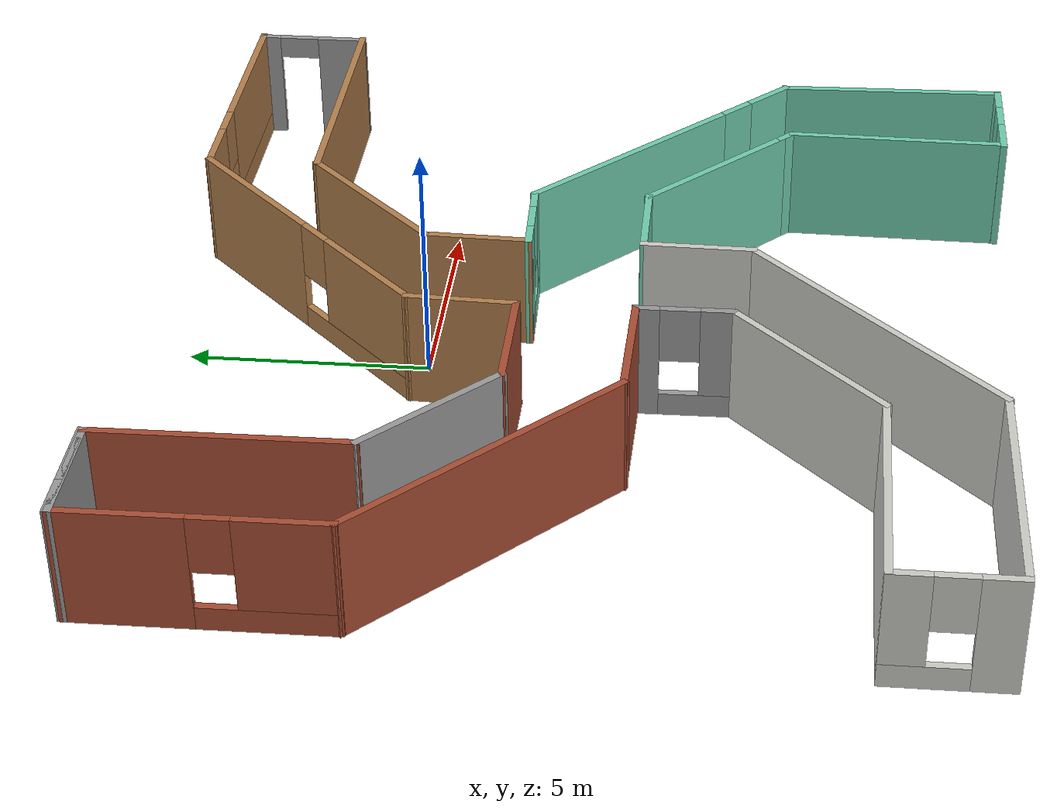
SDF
<?xml version='1.0'?>
<sdf version='1.6'>
  <model name='WindMill'>
    <pose frame=''>0.502984 -3.2246 0 0 -0 0</pose>
    <link name='Wall_100'>
      <collision name='Wall_100_Collision'>
        <geometry>
          <box>
            <size>4.25 0.15 2.5</size>
          </box>
        </geometry>
        <pose frame=''>0 0 1.25 0 -0 0</pose>
      </collision>
      <visual name='Wall_100_Visual'>
        <pose frame=''>0 0 1.25 0 -0 0</pose>
        <geometry>
          <box>
            <size>4.25 0.15 2.5</size>
          </box>
        </geometry>
        <material>
          <script>
            <uri>file://media/materials/scripts/gazebo.material</uri>
            <name>Gazebo/CeilingTiled</name>
          </script>
          <ambient>1 1 1 1</ambient>
        </material>
        <meta>
          <layer>0</layer>
        </meta>
      </visual>
      <pose frame=''>-3.06524 -4.47509 0 0 0 -2.35619</pose>
    </link>
    <link name='Wall_102'>
      <collision name='Wall_102_Collision'>
        <geometry>
          <box>
            <size>7 0.15 2.5</size>
          </box>
        </geometry>
        <pose frame=''>0 0 1.25 0 -0 0</pose>
      </collision>
      <visual name='Wall_102_Visual'>
        <pose frame=''>0 0 1.25 0 -0 0</pose>
        <geometry>
          <box>
            <size>7 0.15 2.5</size>
          </box>
        </geometry>
        <material>
          <script>
            <uri>file://media/materials/scripts/gazebo.material</uri>
            <name>Gazebo/CeilingTiled</name>
          </script>
          <ambient>1 1 1 1</ambient>
        </material>
        <meta>
          <layer>0</layer>
        </meta>
      </visual>
      <pose frame=''>-1.72023 -5.75864 0 0 0 -2.35619</pose>
    </link>
    <link name='Wall_104'>
      <collision name='Wall_104_Collision'>
        <geometry>
          <box>
            <size>2.38906 0.15 2.5</size>
          </box>
        </geometry>
        <pose frame=''>0 0 1.25 0 -0 0</pose>
      </collision>
      <visual name='Wall_104_Visual'>
        <pose frame=''>0 0 1.25 0 -0 0</pose>
        <geometry>
          <box>
            <size>2.38906 0.15 2.5</size>
          </box>
        </geometry>
        <material>
          <script>
            <uri>file://media/materials/scripts/gazebo.material</uri>
            <name>Gazebo/CeilingTiled</name>
          </script>
          <ambient>1 1 1 1</ambient>
        </material>
        <meta>
          <layer>0</layer>
        </meta>
      </visual>
      <pose frame=''>0.72444 -2.2175 0 0 0 -1.59119</pose>
    </link>
    <link name='Wall_106'>
      <pose frame=''>-1.62639 -2.06186 0 0 0 -1.55967</pose>
      <visual name='Wall_106_Visual_0'>
        <pose frame=''>-0.765548 0 1.25 0 -0 0</pose>
        <geometry>
          <box>
            <size>0.546348 0.15 2.5</size>
          </box>
        </geometry>
        <material>
          <script>
            <uri>file://media/materials/scripts/gazebo.material</uri>
            <name>Gazebo/Grey</name>
          </script>
          <ambient>1 1 1 1</ambient>
        </material>
        <meta>
          <layer>0</layer>
        </meta>
      </visual>
      <collision name='Wall_106_Collision_0'>
        <geometry>
          <box>
            <size>0.546348 0.15 2.5</size>
          </box>
        </geometry>
        <pose frame=''>-0.765548 0 1.25 0 -0 0</pose>
      </collision>
      <visual name='Wall_106_Visual_1'>
        <pose frame=''>0.273174 0 0.25 0 -0 0</pose>
        <geometry>
          <box>
            <size>1.5311 0.15 0.5</size>
          </box>
        </geometry>
        <material>
          <script>
            <uri>file://media/materials/scripts/gazebo.material</uri>
            <name>Gazebo/Grey</name>
          </script>
          <ambient>1 1 1 1</ambient>
        </material>
        <meta>
          <layer>0</layer>
        </meta>
      </visual>
      <collision name='Wall_106_Collision_1'>
        <geometry>
          <box>
            <size>1.5311 0.15 0.5</size>
          </box>
        </geometry>
        <pose frame=''>0.273174 0 0.25 0 -0 0</pose>
      </collision>
      <visual name='Wall_106_Visual_2'>
        <pose frame=''>0.673174 0 1.5 0 -0 0</pose>
        <geometry>
          <box>
            <size>0.731095 0.15 2</size>
          </box>
        </geometry>
        <material>
          <script>
            <uri>file://media/materials/scripts/gazebo.material</uri>
            <name>Gazebo/Grey</name>
          </script>
          <ambient>1 1 1 1</ambient>
        </material>
        <meta>
          <layer>0</layer>
        </meta>
      </visual>
      <collision name='Wall_106_Collision_2'>
        <geometry>
          <box>
            <size>0.731095 0.15 2</size>
          </box>
        </geometry>
        <pose frame=''>0.673174 0 1.5 0 -0 0</pose>
      </collision>
      <visual name='Wall_106_Visual_3'>
        <pose frame=''>-0.092374 0 1.9 0 -0 0</pose>
        <geometry>
          <box>
            <size>0.8 0.15 1.2</size>
          </box>
        </geometry>
        <material>
          <script>
            <uri>file://media/materials/scripts/gazebo.material</uri>
            <name>Gazebo/Grey</name>
          </script>
          <ambient>1 1 1 1</ambient>
        </material>
        <meta>
          <layer>0</layer>
        </meta>
      </visual>
      <collision name='Wall_106_Collision_3'>
        <geometry>
          <box>
            <size>0.8 0.15 1.2</size>
          </box>
        </geometry>
        <pose frame=''>-0.092374 0 1.9 0 -0 0</pose>
      </collision>
    </link>
    <link name='Wall_108'>
      <collision name='Wall_108_Collision'>
        <geometry>
          <box>
            <size>4.94583 0.15 2.5</size>
          </box>
        </geometry>
        <pose frame=''>0 0 1.25 0 -0 0</pose>
      </collision>
      <visual name='Wall_108_Visual'>
        <pose frame=''>0 0 1.25 0 -0 0</pose>
        <geometry>
          <box>
            <size>4.94583 0.15 2.5</size>
          </box>
        </geometry>
        <material>
          <script>
            <uri>file://media/materials/scripts/gazebo.material</uri>
            <name>Gazebo/CeilingTiled</name>
          </script>
          <ambient>1 1 1 1</ambient>
        </material>
        <meta>
          <layer>0</layer>
        </meta>
      </visual>
      <pose frame=''>-6.91248 -5.89095 0 0 -0 3.12753</pose>
    </link>
    <link name='Wall_110'>
      <collision name='Wall_110_Collision'>
        <geometry>
          <box>
            <size>5.31815 0.15 2.5</size>
          </box>
        </geometry>
        <pose frame=''>0 0 1.25 0 -0 0</pose>
      </collision>
      <visual name='Wall_110_Visual'>
        <pose frame=''>0 0 1.25 0 -0 0</pose>
        <geometry>
          <box>
            <size>5.31815 0.15 2.5</size>
          </box>
        </geometry>
        <material>
          <script>
            <uri>file://media/materials/scripts/gazebo.material</uri>
            <name>Gazebo/CeilingTiled</name>
          </script>
          <ambient>1 1 1 1</ambient>
        </material>
        <meta>
          <layer>0</layer>
        </meta>
      </visual>
      <pose frame=''>-6.72612 -8.19386 0 0 0 -3.13642</pose>
    </link>
    <link name='Wall_30'>
      <pose frame=''>9.298 7.2768 0 0 -0 1.5708</pose>
      <visual name='Wall_30_Visual_0'>
        <pose frame=''>-0.692179 0 1.25 0 -0 0</pose>
        <geometry>
          <box>
            <size>1.11564 0.15 2.5</size>
          </box>
        </geometry>
        <material>
          <script>
            <uri>file://media/materials/scripts/gazebo.material</uri>
            <name>Gazebo/Grey</name>
          </script>
          <ambient>1 1 1 1</ambient>
        </material>
        <meta>
          <layer>0</layer>
        </meta>
      </visual>
      <collision name='Wall_30_Collision_0'>
        <geometry>
          <box>
            <size>1.11564 0.15 2.5</size>
          </box>
        </geometry>
        <pose frame=''>-0.692179 0 1.25 0 -0 0</pose>
      </collision>
      <visual name='Wall_30_Visual_1'>
        <pose frame=''>1.00782 0 1.25 0 -0 0</pose>
        <geometry>
          <box>
            <size>0.484358 0.15 2.5</size>
          </box>
        </geometry>
        <material>
          <script>
            <uri>file://media/materials/scripts/gazebo.material</uri>
            <name>Gazebo/Grey</name>
          </script>
          <ambient>1 1 1 1</ambient>
        </material>
        <meta>
          <layer>0</layer>
        </meta>
      </visual>
      <collision name='Wall_30_Collision_1'>
        <geometry>
          <box>
            <size>0.484358 0.15 2.5</size>
          </box>
        </geometry>
        <pose frame=''>1.00782 0 1.25 0 -0 0</pose>
      </collision>
      <visual name='Wall_30_Visual_2'>
        <pose frame=''>0.315642 0 2.25 0 -0 0</pose>
        <geometry>
          <box>
            <size>0.9 0.15 0.5</size>
          </box>
        </geometry>
        <material>
          <script>
            <uri>file://media/materials/scripts/gazebo.material</uri>
            <name>Gazebo/Grey</name>
          </script>
          <ambient>1 1 1 1</ambient>
        </material>
        <meta>
          <layer>0</layer>
        </meta>
      </visual>
      <collision name='Wall_30_Collision_2'>
        <geometry>
          <box>
            <size>0.9 0.15 0.5</size>
          </box>
        </geometry>
        <pose frame=''>0.315642 0 2.25 0 -0 0</pose>
      </collision>
    </link>
    <link name='Wall_43'>
      <pose frame=''>6.67268 -8.66869 0 0 -0 0</pose>
      <visual name='Wall_43_Visual_0'>
        <pose frame=''>-0.749658 0 1.25 0 -0 0</pose>
        <geometry>
          <box>
            <size>1.00068 0.15 2.5</size>
          </box>
        </geometry>
        <material>
          <script>
            <uri>file://media/materials/scripts/gazebo.material</uri>
            <name>Gazebo/Grey</name>
          </script>
          <ambient>0.435294 0.796078 0.67451 1</ambient>
        </material>
        <meta>
          <layer>0</layer>
        </meta>
      </visual>
      <collision name='Wall_43_Collision_0'>
        <geometry>
          <box>
            <size>1.00068 0.15 2.5</size>
          </box>
        </geometry>
        <pose frame=''>-0.749658 0 1.25 0 -0 0</pose>
      </collision>
      <visual name='Wall_43_Visual_1'>
        <pose frame=''>0.500342 0 0.25 0 -0 0</pose>
        <geometry>
          <box>
            <size>1.49932 0.15 0.5</size>
          </box>
        </geometry>
        <material>
          <script>
            <uri>file://media/materials/scripts/gazebo.material</uri>
            <name>Gazebo/Grey</name>
          </script>
          <ambient>0.435294 0.796078 0.67451 1</ambient>
        </material>
        <meta>
          <layer>0</layer>
        </meta>
      </visual>
      <collision name='Wall_43_Collision_1'>
        <geometry>
          <box>
            <size>1.49932 0.15 0.5</size>
          </box>
        </geometry>
        <pose frame=''>0.500342 0 0.25 0 -0 0</pose>
      </collision>
      <visual name='Wall_43_Visual_2'>
        <pose frame=''>0.900342 0 1.5 0 -0 0</pose>
        <geometry>
          <box>
            <size>0.699316 0.15 2</size>
          </box>
        </geometry>
        <material>
          <script>
            <uri>file://media/materials/scripts/gazebo.material</uri>
            <name>Gazebo/Grey</name>
          </script>
          <ambient>0.435294 0.796078 0.67451 1</ambient>
        </material>
        <meta>
          <layer>0</layer>
        </meta>
      </visual>
      <collision name='Wall_43_Collision_2'>
        <geometry>
          <box>
            <size>0.699316 0.15 2</size>
          </box>
        </geometry>
        <pose frame=''>0.900342 0 1.5 0 -0 0</pose>
      </collision>
      <visual name='Wall_43_Visual_3'>
        <pose frame=''>0.150684 0 1.9 0 -0 0</pose>
        <geometry>
          <box>
            <size>0.8 0.15 1.2</size>
          </box>
        </geometry>
        <material>
          <script>
            <uri>file://media/materials/scripts/gazebo.material</uri>
            <name>Gazebo/Grey</name>
          </script>
          <ambient>0.435294 0.796078 0.67451 1</ambient>
        </material>
        <meta>
          <layer>0</layer>
        </meta>
      </visual>
      <collision name='Wall_43_Collision_3'>
        <geometry>
          <box>
            <size>0.8 0.15 1.2</size>
          </box>
        </geometry>
        <pose frame=''>0.150684 0 1.9 0 -0 0</pose>
      </collision>
    </link>
    <link name='Wall_50'>
      <pose frame=''>-9.3329 -7.03224 0 0 -0 1.5708</pose>
      <visual name='Wall_50_Visual_0'>
        <pose frame=''>-0.817635 0 1.25 0 -0 0</pose>
        <geometry>
          <box>
            <size>0.864729 0.15 2.5</size>
          </box>
        </geometry>
        <material>
          <script>
            <uri>file://media/materials/scripts/gazebo.material</uri>
            <name>Gazebo/CeilingTiled</name>
          </script>
          <ambient>1 1 1 1</ambient>
        </material>
        <meta>
          <layer>0</layer>
        </meta>
      </visual>
      <collision name='Wall_50_Collision_0'>
        <geometry>
          <box>
            <size>0.864729 0.15 2.5</size>
          </box>
        </geometry>
        <pose frame=''>-0.817635 0 1.25 0 -0 0</pose>
      </collision>
      <visual name='Wall_50_Visual_1'>
        <pose frame=''>0.432365 0 0.25 0 -0 0</pose>
        <geometry>
          <box>
            <size>1.63527 0.15 0.5</size>
          </box>
        </geometry>
        <material>
          <script>
            <uri>file://media/materials/scripts/gazebo.material</uri>
            <name>Gazebo/CeilingTiled</name>
          </script>
          <ambient>1 1 1 1</ambient>
        </material>
        <meta>
          <layer>0</layer>
        </meta>
      </visual>
      <collision name='Wall_50_Collision_1'>
        <geometry>
          <box>
            <size>1.63527 0.15 0.5</size>
          </box>
        </geometry>
        <pose frame=''>0.432365 0 0.25 0 -0 0</pose>
      </collision>
      <visual name='Wall_50_Visual_2'>
        <pose frame=''>0.832365 0 1.5 0 -0 0</pose>
        <geometry>
          <box>
            <size>0.835271 0.15 2</size>
          </box>
        </geometry>
        <material>
          <script>
            <uri>file://media/materials/scripts/gazebo.material</uri>
            <name>Gazebo/CeilingTiled</name>
          </script>
          <ambient>1 1 1 1</ambient>
        </material>
        <meta>
          <layer>0</layer>
        </meta>
      </visual>
      <collision name='Wall_50_Collision_2'>
        <geometry>
          <box>
            <size>0.835271 0.15 2</size>
          </box>
        </geometry>
        <pose frame=''>0.832365 0 1.5 0 -0 0</pose>
      </collision>
      <visual name='Wall_50_Visual_3'>
        <pose frame=''>0.014729 0 1.9 0 -0 0</pose>
        <geometry>
          <box>
            <size>0.8 0.15 1.2</size>
          </box>
        </geometry>
        <material>
          <script>
            <uri>file://media/materials/scripts/gazebo.material</uri>
            <name>Gazebo/CeilingTiled</name>
          </script>
          <ambient>1 1 1 1</ambient>
        </material>
        <meta>
          <layer>0</layer>
        </meta>
      </visual>
      <collision name='Wall_50_Collision_3'>
        <geometry>
          <box>
            <size>0.8 0.15 1.2</size>
          </box>
        </geometry>
        <pose frame=''>0.014729 0 1.9 0 -0 0</pose>
      </collision>
    </link>
    <link name='Wall_55'>
      <collision name='Wall_55_Collision'>
        <geometry>
          <box>
            <size>2.5 0.15 2.5</size>
          </box>
        </geometry>
        <pose frame=''>0 0 1.25 0 -0 0</pose>
      </collision>
      <visual name='Wall_55_Visual'>
        <pose frame=''>0 0 1.25 0 -0 0</pose>
        <geometry>
          <box>
            <size>2.5 0.15 2.5</size>
          </box>
        </geometry>
        <material>
          <script>
            <uri>file://media/materials/scripts/gazebo.material</uri>
            <name>Gazebo/Grey</name>
          </script>
          <ambient>1 1 1 1</ambient>
        </material>
        <meta>
          <layer>0</layer>
        </meta>
      </visual>
      <pose frame=''>-7.70107 8.63578 0 0 -0 0</pose>
    </link>
    <link name='Wall_58'>
      <collision name='Wall_58_Collision'>
        <geometry>
          <box>
            <size>3.5 0.15 2.5</size>
          </box>
        </geometry>
        <pose frame=''>0 0 1.25 0 -0 0</pose>
      </collision>
      <visual name='Wall_58_Visual'>
        <pose frame=''>0 0 1.25 0 -0 0</pose>
        <geometry>
          <box>
            <size>3.5 0.15 2.5</size>
          </box>
        </geometry>
        <material>
          <script>
            <uri>file://media/materials/scripts/gazebo.material</uri>
            <name>Gazebo/Grey</name>
          </script>
          <ambient>1 1 1 1</ambient>
        </material>
        <meta>
          <layer>0</layer>
        </meta>
      </visual>
      <pose frame=''>-5.30188 2.44949 0 0 -0 2.35619</pose>
    </link>
    <link name='Wall_60'>
      <collision name='Wall_60_Collision'>
        <geometry>
          <box>
            <size>6.75 0.15 2.5</size>
          </box>
        </geometry>
        <pose frame=''>0 0 1.25 0 -0 0</pose>
      </collision>
      <visual name='Wall_60_Visual'>
        <pose frame=''>0 0 1.25 0 -0 0</pose>
        <geometry>
          <box>
            <size>6.75 0.15 2.5</size>
          </box>
        </geometry>
        <material>
          <script>
            <uri>file://media/materials/scripts/gazebo.material</uri>
            <name>Gazebo/Bricks</name>
          </script>
          <ambient>1 1 1 1</ambient>
        </material>
        <meta>
          <layer>0</layer>
        </meta>
      </visual>
      <pose frame=''>-6.5205 1.2855 0 0 -0 2.35619</pose>
    </link>
    <link name='Wall_62'>
      <collision name='Wall_62_Collision'>
        <geometry>
          <box>
            <size>2.59562 0.15 2.5</size>
          </box>
        </geometry>
        <pose frame=''>0 0 1.25 0 -0 0</pose>
      </collision>
      <visual name='Wall_62_Visual'>
        <pose frame=''>0 0 1.25 0 -0 0</pose>
        <geometry>
          <box>
            <size>2.59562 0.15 2.5</size>
          </box>
        </geometry>
        <material>
          <script>
            <uri>file://media/materials/scripts/gazebo.material</uri>
            <name>Gazebo/Bricks</name>
          </script>
          <ambient>1 1 1 1</ambient>
        </material>
        <meta>
          <layer>0</layer>
        </meta>
      </visual>
      <pose frame=''>-2.89469 1.25845 0 0 -0 3.13616</pose>
    </link>
    <link name='Wall_63'>
      <collision name='Wall_63_Collision'>
        <geometry>
          <box>
            <size>3.5 0.15 2.5</size>
          </box>
        </geometry>
        <pose frame=''>0 0 1.25 0 -0 0</pose>
      </collision>
      <visual name='Wall_63_Visual'>
        <pose frame=''>0 0 1.25 0 -0 0</pose>
        <geometry>
          <box>
            <size>3.5 0.15 2.5</size>
          </box>
        </geometry>
        <material>
          <script>
            <uri>file://media/materials/scripts/gazebo.material</uri>
            <name>Gazebo/Bricks</name>
          </script>
          <ambient>1 1 1 1</ambient>
        </material>
        <meta>
          <layer>0</layer>
        </meta>
      </visual>
      <pose frame=''>-5.30188 2.44949 0 0 -0 2.35619</pose>
    </link>
    <link name='Wall_64'>
      <collision name='Wall_64_Collision'>
        <geometry>
          <box>
            <size>5.15203 0.15 2.5</size>
          </box>
        </geometry>
        <pose frame=''>0 0 1.25 0 -0 0</pose>
      </collision>
      <visual name='Wall_64_Visual'>
        <pose frame=''>0 0 1.25 0 -0 0</pose>
        <geometry>
          <box>
            <size>5.15203 0.15 2.5</size>
          </box>
        </geometry>
        <material>
          <script>
            <uri>file://media/materials/scripts/gazebo.material</uri>
            <name>Gazebo/Bricks</name>
          </script>
          <ambient>1 1 1 1</ambient>
        </material>
        <meta>
          <layer>0</layer>
        </meta>
      </visual>
      <pose frame=''>-6.50618 6.13484 0 0 -0 1.57875</pose>
    </link>
    <link name='Wall_65'>
      <pose frame=''>-7.70107 8.67036 0 0 -0 3.14159</pose>
      <visual name='Wall_65_Visual_0'>
        <pose frame=''>-0.918287 0 1.25 0 -0 0</pose>
        <geometry>
          <box>
            <size>0.663427 0.15 2.5</size>
          </box>
        </geometry>
        <material>
          <script>
            <uri>file://media/materials/scripts/gazebo.material</uri>
            <name>Gazebo/Grey</name>
          </script>
          <ambient>1 1 1 1</ambient>
        </material>
        <meta>
          <layer>0</layer>
        </meta>
      </visual>
      <collision name='Wall_65_Collision_0'>
        <geometry>
          <box>
            <size>0.663427 0.15 2.5</size>
          </box>
        </geometry>
        <pose frame=''>-0.918287 0 1.25 0 -0 0</pose>
      </collision>
      <visual name='Wall_65_Visual_1'>
        <pose frame=''>0.781713 0 1.25 0 -0 0</pose>
        <geometry>
          <box>
            <size>0.936573 0.15 2.5</size>
          </box>
        </geometry>
        <material>
          <script>
            <uri>file://media/materials/scripts/gazebo.material</uri>
            <name>Gazebo/Grey</name>
          </script>
          <ambient>1 1 1 1</ambient>
        </material>
        <meta>
          <layer>0</layer>
        </meta>
      </visual>
      <collision name='Wall_65_Collision_1'>
        <geometry>
          <box>
            <size>0.936573 0.15 2.5</size>
          </box>
        </geometry>
        <pose frame=''>0.781713 0 1.25 0 -0 0</pose>
      </collision>
      <visual name='Wall_65_Visual_2'>
        <pose frame=''>-0.136573 0 2.25 0 -0 0</pose>
        <geometry>
          <box>
            <size>0.9 0.15 0.5</size>
          </box>
        </geometry>
        <material>
          <script>
            <uri>file://media/materials/scripts/gazebo.material</uri>
            <name>Gazebo/Grey</name>
          </script>
          <ambient>1 1 1 1</ambient>
        </material>
        <meta>
          <layer>0</layer>
        </meta>
      </visual>
      <collision name='Wall_65_Collision_2'>
        <geometry>
          <box>
            <size>0.9 0.15 0.5</size>
          </box>
        </geometry>
        <pose frame=''>-0.136573 0 2.25 0 -0 0</pose>
      </collision>
    </link>
    <link name='Wall_66'>
      <pose frame=''>-8.86501 6.12736 0 0 0 -1.56639</pose>
      <visual name='Wall_66_Visual_0'>
        <pose frame=''>-1.34246 0 1.25 0 -0 0</pose>
        <geometry>
          <box>
            <size>2.48273 0.15 2.5</size>
          </box>
        </geometry>
        <material>
          <script>
            <uri>file://media/materials/scripts/gazebo.material</uri>
            <name>Gazebo/Bricks</name>
          </script>
          <ambient>1 1 1 1</ambient>
        </material>
        <meta>
          <layer>0</layer>
        </meta>
      </visual>
      <collision name='Wall_66_Collision_0'>
        <geometry>
          <box>
            <size>2.48273 0.15 2.5</size>
          </box>
        </geometry>
        <pose frame=''>-1.34246 0 1.25 0 -0 0</pose>
      </collision>
      <visual name='Wall_66_Visual_1'>
        <pose frame=''>1.24137 0 0.25 0 -0 0</pose>
        <geometry>
          <box>
            <size>2.68492 0.15 0.5</size>
          </box>
        </geometry>
        <material>
          <script>
            <uri>file://media/materials/scripts/gazebo.material</uri>
            <name>Gazebo/Bricks</name>
          </script>
          <ambient>1 1 1 1</ambient>
        </material>
        <meta>
          <layer>0</layer>
        </meta>
      </visual>
      <collision name='Wall_66_Collision_1'>
        <geometry>
          <box>
            <size>2.68492 0.15 0.5</size>
          </box>
        </geometry>
        <pose frame=''>1.24137 0 0.25 0 -0 0</pose>
      </collision>
      <visual name='Wall_66_Visual_2'>
        <pose frame=''>1.64137 0 1.5 0 -0 0</pose>
        <geometry>
          <box>
            <size>1.88492 0.15 2</size>
          </box>
        </geometry>
        <material>
          <script>
            <uri>file://media/materials/scripts/gazebo.material</uri>
            <name>Gazebo/Bricks</name>
          </script>
          <ambient>1 1 1 1</ambient>
        </material>
        <meta>
          <layer>0</layer>
        </meta>
      </visual>
      <collision name='Wall_66_Collision_2'>
        <geometry>
          <box>
            <size>1.88492 0.15 2</size>
          </box>
        </geometry>
        <pose frame=''>1.64137 0 1.5 0 -0 0</pose>
      </collision>
      <visual name='Wall_66_Visual_3'>
        <pose frame=''>0.298907 0 1.9 0 -0 0</pose>
        <geometry>
          <box>
            <size>0.8 0.15 1.2</size>
          </box>
        </geometry>
        <material>
          <script>
            <uri>file://media/materials/scripts/gazebo.material</uri>
            <name>Gazebo/Bricks</name>
          </script>
          <ambient>1 1 1 1</ambient>
        </material>
        <meta>
          <layer>0</layer>
        </meta>
      </visual>
      <collision name='Wall_66_Collision_3'>
        <geometry>
          <box>
            <size>0.8 0.15 1.2</size>
          </box>
        </geometry>
        <pose frame=''>0.298907 0 1.9 0 -0 0</pose>
      </collision>
    </link>
    <link name='Wall_68'>
      <collision name='Wall_68_Collision'>
        <geometry>
          <box>
            <size>2.70042 0.15 2.5</size>
          </box>
        </geometry>
        <pose frame=''>0 0 1.25 0 -0 0</pose>
      </collision>
      <visual name='Wall_68_Visual'>
        <pose frame=''>0 0 1.25 0 -0 0</pose>
        <geometry>
          <box>
            <size>2.70042 0.15 2.5</size>
          </box>
        </geometry>
        <material>
          <script>
            <uri>file://media/materials/scripts/gazebo.material</uri>
            <name>Gazebo/Bricks</name>
          </script>
          <ambient>1 1 1 1</ambient>
        </material>
        <meta>
          <layer>0</layer>
        </meta>
      </visual>
      <pose frame=''>-2.91208 -1.07308 0 0 0 -0.019703</pose>
    </link>
    <link name='Wall_70'>
      <collision name='Wall_70_Collision'>
        <geometry>
          <box>
            <size>4 0.15 2.5</size>
          </box>
        </geometry>
        <pose frame=''>0 0 1.25 0 -0 0</pose>
      </collision>
      <visual name='Wall_70_Visual'>
        <pose frame=''>0 0 1.25 0 -0 0</pose>
        <geometry>
          <box>
            <size>4 0.15 2.5</size>
          </box>
        </geometry>
        <material>
          <script>
            <uri>file://media/materials/scripts/gazebo.material</uri>
            <name>Gazebo/Wood</name>
          </script>
          <ambient>1 1 1 1</ambient>
        </material>
        <meta>
          <layer>0</layer>
        </meta>
      </visual>
      <pose frame=''>2.11327 4.7654 0 0 -0 0.785398</pose>
    </link>
    <link name='Wall_72'>
      <pose frame=''>0.920117 5.95486 0 0 0 -2.35619</pose>
      <visual name='Wall_72_Visual_0'>
        <pose frame=''>-1.80499 0 1.25 0 -0 0</pose>
        <geometry>
          <box>
            <size>3.64002 0.15 2.5</size>
          </box>
        </geometry>
        <material>
          <script>
            <uri>file://media/materials/scripts/gazebo.material</uri>
            <name>Gazebo/Wood</name>
          </script>
          <ambient>1 1 1 1</ambient>
        </material>
        <meta>
          <layer>0</layer>
        </meta>
      </visual>
      <collision name='Wall_72_Collision_0'>
        <geometry>
          <box>
            <size>3.64002 0.15 2.5</size>
          </box>
        </geometry>
        <pose frame=''>-1.80499 0 1.25 0 -0 0</pose>
      </collision>
      <visual name='Wall_72_Visual_1'>
        <pose frame=''>1.82001 0 0.25 0 -0 0</pose>
        <geometry>
          <box>
            <size>3.60998 0.15 0.5</size>
          </box>
        </geometry>
        <material>
          <script>
            <uri>file://media/materials/scripts/gazebo.material</uri>
            <name>Gazebo/Wood</name>
          </script>
          <ambient>1 1 1 1</ambient>
        </material>
        <meta>
          <layer>0</layer>
        </meta>
      </visual>
      <collision name='Wall_72_Collision_1'>
        <geometry>
          <box>
            <size>3.60998 0.15 0.5</size>
          </box>
        </geometry>
        <pose frame=''>1.82001 0 0.25 0 -0 0</pose>
      </collision>
      <visual name='Wall_72_Visual_2'>
        <pose frame=''>2.22001 0 1.5 0 -0 0</pose>
        <geometry>
          <box>
            <size>2.80998 0.15 2</size>
          </box>
        </geometry>
        <material>
          <script>
            <uri>file://media/materials/scripts/gazebo.material</uri>
            <name>Gazebo/Wood</name>
          </script>
          <ambient>1 1 1 1</ambient>
        </material>
        <meta>
          <layer>0</layer>
        </meta>
      </visual>
      <collision name='Wall_72_Collision_2'>
        <geometry>
          <box>
            <size>2.80998 0.15 2</size>
          </box>
        </geometry>
        <pose frame=''>2.22001 0 1.5 0 -0 0</pose>
      </collision>
      <visual name='Wall_72_Visual_3'>
        <pose frame=''>0.415021 0 1.9 0 -0 0</pose>
        <geometry>
          <box>
            <size>0.8 0.15 1.2</size>
          </box>
        </geometry>
        <material>
          <script>
            <uri>file://media/materials/scripts/gazebo.material</uri>
            <name>Gazebo/Wood</name>
          </script>
          <ambient>1 1 1 1</ambient>
        </material>
        <meta>
          <layer>0</layer>
        </meta>
      </visual>
      <collision name='Wall_72_Collision_3'>
        <geometry>
          <box>
            <size>0.8 0.15 1.2</size>
          </box>
        </geometry>
        <pose frame=''>0.415021 0 1.9 0 -0 0</pose>
      </collision>
    </link>
    <link name='Wall_74'>
      <pose frame=''>6.38146 8.45844 0 0 0 -0.002252</pose>
      <visual name='Wall_74_Visual_0'>
        <pose frame=''>-2.32999 0 1.25 0 -0 0</pose>
        <geometry>
          <box>
            <size>1.39226 0.15 2.5</size>
          </box>
        </geometry>
        <material>
          <script>
            <uri>file://media/materials/scripts/gazebo.material</uri>
            <name>Gazebo/Wood</name>
          </script>
          <ambient>1 1 1 1</ambient>
        </material>
        <meta>
          <layer>0</layer>
        </meta>
      </visual>
      <collision name='Wall_74_Collision_0'>
        <geometry>
          <box>
            <size>1.39226 0.15 2.5</size>
          </box>
        </geometry>
        <pose frame=''>-2.32999 0 1.25 0 -0 0</pose>
      </collision>
      <visual name='Wall_74_Visual_1'>
        <pose frame=''>0.696132 0 0.25 0 -0 0</pose>
        <geometry>
          <box>
            <size>4.65999 0.15 0.5</size>
          </box>
        </geometry>
        <material>
          <script>
            <uri>file://media/materials/scripts/gazebo.material</uri>
            <name>Gazebo/Wood</name>
          </script>
          <ambient>1 1 1 1</ambient>
        </material>
        <meta>
          <layer>0</layer>
        </meta>
      </visual>
      <collision name='Wall_74_Collision_1'>
        <geometry>
          <box>
            <size>4.65999 0.15 0.5</size>
          </box>
        </geometry>
        <pose frame=''>0.696132 0 0.25 0 -0 0</pose>
      </collision>
      <visual name='Wall_74_Visual_2'>
        <pose frame=''>1.09613 0 1.5 0 -0 0</pose>
        <geometry>
          <box>
            <size>3.85999 0.15 2</size>
          </box>
        </geometry>
        <material>
          <script>
            <uri>file://media/materials/scripts/gazebo.material</uri>
            <name>Gazebo/Wood</name>
          </script>
          <ambient>1 1 1 1</ambient>
        </material>
        <meta>
          <layer>0</layer>
        </meta>
      </visual>
      <collision name='Wall_74_Collision_2'>
        <geometry>
          <box>
            <size>3.85999 0.15 2</size>
          </box>
        </geometry>
        <pose frame=''>1.09613 0 1.5 0 -0 0</pose>
      </collision>
      <visual name='Wall_74_Visual_3'>
        <pose frame=''>-1.23386 0 1.9 0 -0 0</pose>
        <geometry>
          <box>
            <size>0.8 0.15 1.2</size>
          </box>
        </geometry>
        <material>
          <script>
            <uri>file://media/materials/scripts/gazebo.material</uri>
            <name>Gazebo/Wood</name>
          </script>
          <ambient>1 1 1 1</ambient>
        </material>
        <meta>
          <layer>0</layer>
        </meta>
      </visual>
      <collision name='Wall_74_Collision_3'>
        <geometry>
          <box>
            <size>0.8 0.15 1.2</size>
          </box>
        </geometry>
        <pose frame=''>-1.23386 0 1.9 0 -0 0</pose>
      </collision>
    </link>
    <link name='Wall_76'>
      <collision name='Wall_76_Collision'>
        <geometry>
          <box>
            <size>6.00819 0.15 2.5</size>
          </box>
        </geometry>
        <pose frame=''>0 0 1.25 0 -0 0</pose>
      </collision>
      <visual name='Wall_76_Visual'>
        <pose frame=''>0 0 1.25 0 -0 0</pose>
        <geometry>
          <box>
            <size>6.00819 0.15 2.5</size>
          </box>
        </geometry>
        <material>
          <script>
            <uri>file://media/materials/scripts/gazebo.material</uri>
            <name>Gazebo/Wood</name>
          </script>
          <ambient>1 1 1 1</ambient>
        </material>
        <meta>
          <layer>0</layer>
        </meta>
      </visual>
      <pose frame=''>6.40351 6.11419 0 0 0 -0.00423</pose>
    </link>
    <link name='Wall_78'>
      <collision name='Wall_78_Collision'>
        <geometry>
          <box>
            <size>2.30369 0.15 2.5</size>
          </box>
        </geometry>
        <pose frame=''>0 0 1.25 0 -0 0</pose>
      </collision>
      <visual name='Wall_78_Visual'>
        <pose frame=''>0 0 1.25 0 -0 0</pose>
        <geometry>
          <box>
            <size>2.30369 0.15 2.5</size>
          </box>
        </geometry>
        <material>
          <script>
            <uri>file://media/materials/scripts/gazebo.material</uri>
            <name>Gazebo/Wood</name>
          </script>
          <ambient>1 1 1 1</ambient>
        </material>
        <meta>
          <layer>0</layer>
        </meta>
      </visual>
      <pose frame=''>0.715092 2.32801 0 0 -0 1.53644</pose>
    </link>
    <link name='Wall_81'>
      <collision name='Wall_81_Collision'>
        <geometry>
          <box>
            <size>2.34436 0.15 2.5</size>
          </box>
        </geometry>
        <pose frame=''>0 0 1.25 0 -0 0</pose>
      </collision>
      <visual name='Wall_81_Visual'>
        <pose frame=''>0 0 1.25 0 -0 0</pose>
        <geometry>
          <box>
            <size>2.34436 0.15 2.5</size>
          </box>
        </geometry>
        <material>
          <script>
            <uri>file://media/materials/scripts/gazebo.material</uri>
            <name>Gazebo/Wood</name>
          </script>
          <ambient>1 1 1 1</ambient>
        </material>
        <meta>
          <layer>0</layer>
        </meta>
      </visual>
      <pose frame=''>-1.63101 2.34822 0 0 -0 1.53352</pose>
    </link>
    <link name='Wall_87'>
      <collision name='Wall_87_Collision'>
        <geometry>
          <box>
            <size>4 0.15 2.5</size>
          </box>
        </geometry>
        <pose frame=''>0 0 1.25 0 -0 0</pose>
      </collision>
      <visual name='Wall_87_Visual'>
        <pose frame=''>0 0 1.25 0 -0 0</pose>
        <geometry>
          <box>
            <size>4 0.15 2.5</size>
          </box>
        </geometry>
        <material>
          <script>
            <uri>file://media/materials/scripts/gazebo.material</uri>
            <name>Gazebo/Grey</name>
          </script>
          <ambient>0.435294 0.796078 0.67451 1</ambient>
        </material>
        <meta>
          <layer>0</layer>
        </meta>
      </visual>
      <pose frame=''>4.00039 -2.45391 0 0 0 -0.785398</pose>
    </link>
    <link name='Wall_88'>
      <collision name='Wall_88_Collision'>
        <geometry>
          <box>
            <size>0.5 0.15 2.5</size>
          </box>
        </geometry>
        <pose frame=''>0 0 1.25 0 -0 0</pose>
      </collision>
      <visual name='Wall_88_Visual'>
        <pose frame=''>0 0 1.25 0 -0 0</pose>
        <geometry>
          <box>
            <size>0.5 0.15 2.5</size>
          </box>
        </geometry>
        <material>
          <script>
            <uri>file://media/materials/scripts/gazebo.material</uri>
            <name>Gazebo/Grey</name>
          </script>
          <ambient>0.435294 0.796078 0.67451 1</ambient>
        </material>
        <meta>
          <layer>0</layer>
        </meta>
      </visual>
      <pose frame=''>5.48532 -3.93883 0 0 0 -0.785398</pose>
    </link>
    <link name='Wall_90'>
      <pose frame=''>5.15137 -1.2876 0 0 0 -0.785398</pose>
      <visual name='Wall_90_Visual_0'>
        <pose frame=''>-1.00392 0 1.25 0 -0 0</pose>
        <geometry>
          <box>
            <size>5.49216 0.15 2.5</size>
          </box>
        </geometry>
        <material>
          <script>
            <uri>file://media/materials/scripts/gazebo.material</uri>
            <name>Gazebo/Grey</name>
          </script>
          <ambient>0.435294 0.796078 0.67451 1</ambient>
        </material>
        <meta>
          <layer>0</layer>
        </meta>
      </visual>
      <collision name='Wall_90_Collision_0'>
        <geometry>
          <box>
            <size>5.49216 0.15 2.5</size>
          </box>
        </geometry>
        <pose frame=''>-1.00392 0 1.25 0 -0 0</pose>
      </collision>
      <visual name='Wall_90_Visual_1'>
        <pose frame=''>2.74608 0 0.25 0 -0 0</pose>
        <geometry>
          <box>
            <size>2.00784 0.15 0.5</size>
          </box>
        </geometry>
        <material>
          <script>
            <uri>file://media/materials/scripts/gazebo.material</uri>
            <name>Gazebo/Grey</name>
          </script>
          <ambient>0.435294 0.796078 0.67451 1</ambient>
        </material>
        <meta>
          <layer>0</layer>
        </meta>
      </visual>
      <collision name='Wall_90_Collision_1'>
        <geometry>
          <box>
            <size>2.00784 0.15 0.5</size>
          </box>
        </geometry>
        <pose frame=''>2.74608 0 0.25 0 -0 0</pose>
      </collision>
      <visual name='Wall_90_Visual_2'>
        <pose frame=''>3.14608 0 1.5 0 -0 0</pose>
        <geometry>
          <box>
            <size>1.20784 0.15 2</size>
          </box>
        </geometry>
        <material>
          <script>
            <uri>file://media/materials/scripts/gazebo.material</uri>
            <name>Gazebo/Grey</name>
          </script>
          <ambient>0.435294 0.796078 0.67451 1</ambient>
        </material>
        <meta>
          <layer>0</layer>
        </meta>
      </visual>
      <collision name='Wall_90_Collision_2'>
        <geometry>
          <box>
            <size>1.20784 0.15 2</size>
          </box>
        </geometry>
        <pose frame=''>3.14608 0 1.5 0 -0 0</pose>
      </collision>
      <visual name='Wall_90_Visual_3'>
        <pose frame=''>2.14216 0 1.9 0 -0 0</pose>
        <geometry>
          <box>
            <size>0.8 0.15 1.2</size>
          </box>
        </geometry>
        <material>
          <script>
            <uri>file://media/materials/scripts/gazebo.material</uri>
            <name>Gazebo/Grey</name>
          </script>
          <ambient>0.435294 0.796078 0.67451 1</ambient>
        </material>
        <meta>
          <layer>0</layer>
        </meta>
      </visual>
      <collision name='Wall_90_Collision_3'>
        <geometry>
          <box>
            <size>0.8 0.15 1.2</size>
          </box>
        </geometry>
        <pose frame=''>2.14216 0 1.9 0 -0 0</pose>
      </collision>
    </link>
    <link name='Wall_92'>
      <pose frame=''>1.61542 1.28141 0 0 -0 0.031577</pose>
      <visual name='Wall_92_Visual_0'>
        <pose frame=''>-0.70047 0 1.25 0 -0 0</pose>
        <geometry>
          <box>
            <size>0.624644 0.15 2.5</size>
          </box>
        </geometry>
        <material>
          <script>
            <uri>file://media/materials/scripts/gazebo.material</uri>
            <name>Gazebo/Grey</name>
          </script>
          <ambient>0.435294 0.796078 0.67451 1</ambient>
        </material>
        <meta>
          <layer>0</layer>
        </meta>
      </visual>
      <collision name='Wall_92_Collision_0'>
        <geometry>
          <box>
            <size>0.624644 0.15 2.5</size>
          </box>
        </geometry>
        <pose frame=''>-0.70047 0 1.25 0 -0 0</pose>
      </collision>
      <visual name='Wall_92_Visual_1'>
        <pose frame=''>0.312322 0 0.25 0 -0 0</pose>
        <geometry>
          <box>
            <size>1.40094 0.15 0.5</size>
          </box>
        </geometry>
        <material>
          <script>
            <uri>file://media/materials/scripts/gazebo.material</uri>
            <name>Gazebo/Grey</name>
          </script>
          <ambient>0.435294 0.796078 0.67451 1</ambient>
        </material>
        <meta>
          <layer>0</layer>
        </meta>
      </visual>
      <collision name='Wall_92_Collision_1'>
        <geometry>
          <box>
            <size>1.40094 0.15 0.5</size>
          </box>
        </geometry>
        <pose frame=''>0.312322 0 0.25 0 -0 0</pose>
      </collision>
      <visual name='Wall_92_Visual_2'>
        <pose frame=''>0.712322 0 1.5 0 -0 0</pose>
        <geometry>
          <box>
            <size>0.60094 0.15 2</size>
          </box>
        </geometry>
        <material>
          <script>
            <uri>file://media/materials/scripts/gazebo.material</uri>
            <name>Gazebo/Grey</name>
          </script>
          <ambient>0.435294 0.796078 0.67451 1</ambient>
        </material>
        <meta>
          <layer>0</layer>
        </meta>
      </visual>
      <collision name='Wall_92_Collision_2'>
        <geometry>
          <box>
            <size>0.60094 0.15 2</size>
          </box>
        </geometry>
        <pose frame=''>0.712322 0 1.5 0 -0 0</pose>
      </collision>
      <visual name='Wall_92_Visual_3'>
        <pose frame=''>0.011852 0 1.9 0 -0 0</pose>
        <geometry>
          <box>
            <size>0.8 0.15 1.2</size>
          </box>
        </geometry>
        <material>
          <script>
            <uri>file://media/materials/scripts/gazebo.material</uri>
            <name>Gazebo/Grey</name>
          </script>
          <ambient>0.435294 0.796078 0.67451 1</ambient>
        </material>
        <meta>
          <layer>0</layer>
        </meta>
      </visual>
      <collision name='Wall_92_Collision_3'>
        <geometry>
          <box>
            <size>0.8 0.15 1.2</size>
          </box>
        </geometry>
        <pose frame=''>0.011852 0 1.9 0 -0 0</pose>
      </collision>
    </link>
    <link name='Wall_94'>
      <collision name='Wall_94_Collision'>
        <geometry>
          <box>
            <size>2.04195 0.15 2.5</size>
          </box>
        </geometry>
        <pose frame=''>0 0 1.25 0 -0 0</pose>
      </collision>
      <visual name='Wall_94_Visual'>
        <pose frame=''>0 0 1.25 0 -0 0</pose>
        <geometry>
          <box>
            <size>2.04195 0.15 2.5</size>
          </box>
        </geometry>
        <material>
          <script>
            <uri>file://media/materials/scripts/gazebo.material</uri>
            <name>Gazebo/Grey</name>
          </script>
          <ambient>0.435294 0.796078 0.67451 1</ambient>
        </material>
        <meta>
          <layer>0</layer>
        </meta>
      </visual>
      <pose frame=''>1.69324 -1.09546 0 0 -0 0.002893</pose>
    </link>
    <link name='Wall_96'>
      <collision name='Wall_96_Collision'>
        <geometry>
          <box>
            <size>4.75746 0.15 2.5</size>
          </box>
        </geometry>
        <pose frame=''>0 0 1.25 0 -0 0</pose>
      </collision>
      <visual name='Wall_96_Visual'>
        <pose frame=''>0 0 1.25 0 -0 0</pose>
        <geometry>
          <box>
            <size>4.75746 0.15 2.5</size>
          </box>
        </geometry>
        <material>
          <script>
            <uri>file://media/materials/scripts/gazebo.material</uri>
            <name>Gazebo/Grey</name>
          </script>
          <ambient>0.435294 0.796078 0.67451 1</ambient>
        </material>
        <meta>
          <layer>0</layer>
        </meta>
      </visual>
      <pose frame=''>5.56474 -6.36563 0 0 0 -1.59004</pose>
    </link>
    <link name='Wall_98'>
      <collision name='Wall_98_Collision'>
        <geometry>
          <box>
            <size>4.93346 0.15 2.5</size>
          </box>
        </geometry>
        <pose frame=''>0 0 1.25 0 -0 0</pose>
      </collision>
      <visual name='Wall_98_Visual'>
        <pose frame=''>0 0 1.25 0 -0 0</pose>
        <geometry>
          <box>
            <size>4.93346 0.15 2.5</size>
          </box>
        </geometry>
        <material>
          <script>
            <uri>file://media/materials/scripts/gazebo.material</uri>
            <name>Gazebo/Grey</name>
          </script>
          <ambient>0.435294 0.796078 0.67451 1</ambient>
        </material>
        <meta>
          <layer>0</layer>
        </meta>
      </visual>
      <pose frame=''>7.8102 -6.27745 0 0 0 -1.54562</pose>
    </link>
    <static>1</static>
  </model>
</sdf>
